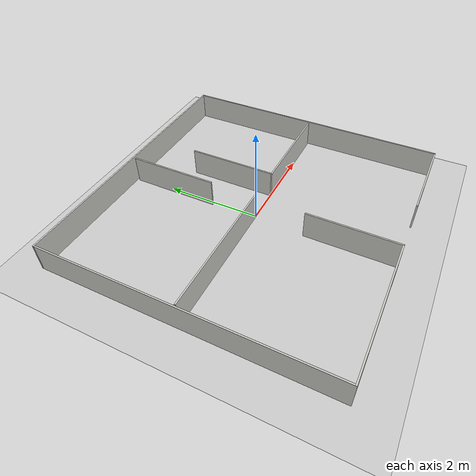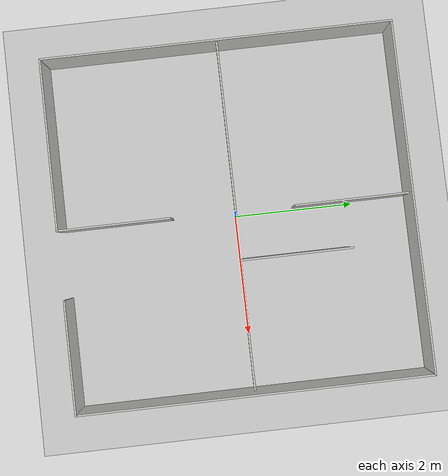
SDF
<?xml version="1.0" ?>

<sdf version="1.5">

  <world name="home-area">

    <scene>
      <ambient>0.6 0.6 0.6 1</ambient>
      <sky>
        <sunrise />
        <clouds>
          <speed>0.6</speed>
        </clouds>
      </sky>
    </scene>

    <!-- Engines: ode, bullet, simbody, dart-->
    <physics type="dart">
      <max_step_size>0.001</max_step_size>
      <real_time_factor>1</real_time_factor>
      <real_time_update_rate>1000</real_time_update_rate>
      <gravity>0 0 -9.8</gravity>
    </physics>

    <include>
      <uri>model://sun</uri>
    </include>

    <include>
      <uri>model://ground_plane</uri>
    </include>

    <model name="home-area">
      <include>
        <uri>model://home-area</uri>
        <pose>0 0 0 0 0 0</pose>
      </include>
    </model>

  </world>

</sdf>

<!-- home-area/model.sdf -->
<sdf version='1.6'>
  <model name='home-area'>
    <pose frame=''>0.036029 0.025 0 0 -0 0</pose>
    <link name='Wall_13'>
      <collision name='Wall_13_Collision'>
        <geometry>
          <box>
            <size>5.88029 0.03 0.6</size>
          </box>
        </geometry>
        <pose frame=''>0 0 0.3 0 -0 0</pose>
      </collision>
      <visual name='Wall_13_Visual'>
        <pose frame=''>0 0 0.3 0 -0 0</pose>
        <geometry>
          <box>
            <size>5.88029 0.03 0.6</size>
          </box>
        </geometry>
        <material>
          <script>
            <uri>file://media/materials/scripts/gazebo.material</uri>
            <name>Gazebo/CeilingTiled</name>
          </script>
          <ambient>1 1 1 1</ambient>
        </material>
        <meta>
          <layer>0</layer>
        </meta>
      </visual>
      <pose frame=''>2.92497 -0 0 0 -0 -1.5708</pose>
    </link>
    <link name='Wall_14'>
      <collision name='Wall_14_Collision'>
        <geometry>
          <box>
            <size>1.88012 0.03 0.6</size>
          </box>
        </geometry>
        <pose frame=''>0 0 0.3 0 -0 0</pose>
      </collision>
      <visual name='Wall_14_Visual'>
        <pose frame=''>0 0 0.3 0 -0 0</pose>
        <geometry>
          <box>
            <size>1.88012 0.03 0.6</size>
          </box>
        </geometry>
        <material>
          <script>
            <uri>file://media/materials/scripts/gazebo.material</uri>
            <name>Gazebo/CeilingTiled</name>
          </script>
          <ambient>1 1 1 1</ambient>
        </material>
        <meta>
          <layer>0</layer>
        </meta>
      </visual>
      <pose frame=''>1.99997 -2.925 0 0 -0 3.14159</pose>
    </link>
    <link name='Wall_16'>
      <collision name='Wall_16_Collision'>
        <geometry>
          <box>
            <size>1.87987 0.03 0.6</size>
          </box>
        </geometry>
        <pose frame=''>0 0 0.3 0 -0 0</pose>
      </collision>
      <visual name='Wall_16_Visual'>
        <pose frame=''>0 0 0.3 0 -0 0</pose>
        <geometry>
          <box>
            <size>1.87987 0.03 0.6</size>
          </box>
        </geometry>
        <material>
          <script>
            <uri>file://media/materials/scripts/gazebo.material</uri>
            <name>Gazebo/CeilingTiled</name>
          </script>
          <ambient>1 1 1 1</ambient>
        </material>
        <meta>
          <layer>0</layer>
        </meta>
      </visual>
      <pose frame=''>-0.054029 1.922 0 0 -0 -1.5708</pose>
    </link>
    <link name='Wall_18'>
      <collision name='Wall_18_Collision'>
        <geometry>
          <box>
            <size>2.88023 0.03 0.6</size>
          </box>
        </geometry>
        <pose frame=''>0 0 0.3 0 -0 0</pose>
      </collision>
      <visual name='Wall_18_Visual'>
        <pose frame=''>0 0 0.3 0 -0 0</pose>
        <geometry>
          <box>
            <size>2.88023 0.03 0.6</size>
          </box>
        </geometry>
        <material>
          <script>
            <uri>file://media/materials/scripts/gazebo.material</uri>
            <name>Gazebo/CeilingTiled</name>
          </script>
          <ambient>1 1 1 1</ambient>
        </material>
        <meta>
          <layer>0</layer>
        </meta>
      </visual>
      <pose frame=''>-1.45403 0.01 0 0 -0 0</pose>
    </link>
    <link name='Wall_21'>
      <collision name='Wall_21_Collision'>
        <geometry>
          <box>
            <size>2.13 0.03 0.6</size>
          </box>
        </geometry>
        <pose frame=''>0 0 0.3 0 -0 0</pose>
      </collision>
      <visual name='Wall_21_Visual'>
        <pose frame=''>0 0 0.3 0 -0 0</pose>
        <geometry>
          <box>
            <size>2.13 0.03 0.6</size>
          </box>
        </geometry>
        <material>
          <script>
            <uri>file://media/materials/scripts/gazebo.material</uri>
            <name>Gazebo/CeilingTiled</name>
          </script>
          <ambient>1 1 1 1</ambient>
        </material>
        <meta>
          <layer>0</layer>
        </meta>
      </visual>
      <pose frame=''>1.78497 -0.003 0 0 -0 3.14159</pose>
    </link>
    <link name='Wall_22'>
      <collision name='Wall_22_Collision'>
        <geometry>
          <box>
            <size>1.87955 0.03 0.6</size>
          </box>
        </geometry>
        <pose frame=''>0 0 0.3 0 -0 0</pose>
      </collision>
      <visual name='Wall_22_Visual'>
        <pose frame=''>0 0 0.3 0 -0 0</pose>
        <geometry>
          <box>
            <size>1.87955 0.03 0.6</size>
          </box>
        </geometry>
        <material>
          <script>
            <uri>file://media/materials/scripts/gazebo.material</uri>
            <name>Gazebo/CeilingTiled</name>
          </script>
          <ambient>1 1 1 1</ambient>
        </material>
        <meta>
          <layer>0</layer>
        </meta>
      </visual>
      <pose frame=''>0.734971 0.922 0 0 -0 1.5708</pose>
    </link>
    <link name='Wall_5'>
      <collision name='Wall_5_Collision'>
        <geometry>
          <box>
            <size>5.88 0.03 0.6</size>
          </box>
        </geometry>
        <pose frame=''>0 0 0.3 0 -0 0</pose>
      </collision>
      <visual name='Wall_5_Visual'>
        <pose frame=''>0 0 0.3 0 -0 0</pose>
        <geometry>
          <box>
            <size>5.88 0.03 0.6</size>
          </box>
        </geometry>
        <material>
          <script>
            <uri>file://media/materials/scripts/gazebo.material</uri>
            <name>Gazebo/CeilingTiled</name>
          </script>
          <ambient>1 1 1 1</ambient>
        </material>
        <meta>
          <layer>0</layer>
        </meta>
      </visual>
      <pose frame=''>-2.9e-05 2.925 0 0 -0 3.14159</pose>
    </link>
    <link name='Wall_6'>
      <collision name='Wall_6_Collision'>
        <geometry>
          <box>
            <size>5.88029 0.03 0.6</size>
          </box>
        </geometry>
        <pose frame=''>0 0 0.3 0 -0 0</pose>
      </collision>
      <visual name='Wall_6_Visual'>
        <pose frame=''>0 0 0.3 0 -0 0</pose>
        <geometry>
          <box>
            <size>5.88029 0.03 0.6</size>
          </box>
        </geometry>
        <material>
          <script>
            <uri>file://media/materials/scripts/gazebo.material</uri>
            <name>Gazebo/CeilingTiled</name>
          </script>
          <ambient>1 1 1 1</ambient>
        </material>
        <meta>
          <layer>0</layer>
        </meta>
      </visual>
      <pose frame=''>-2.92503 -0 0 0 -0 -1.5708</pose>
    </link>
    <link name='Wall_7'>
      <collision name='Wall_7_Collision'>
        <geometry>
          <box>
            <size>2.87988 0.03 0.6</size>
          </box>
        </geometry>
        <pose frame=''>0 0 0.3 0 -0 0</pose>
      </collision>
      <visual name='Wall_7_Visual'>
        <pose frame=''>0 0 0.3 0 -0 0</pose>
        <geometry>
          <box>
            <size>2.87988 0.03 0.6</size>
          </box>
        </geometry>
        <material>
          <script>
            <uri>file://media/materials/scripts/gazebo.material</uri>
            <name>Gazebo/CeilingTiled</name>
          </script>
          <ambient>1 1 1 1</ambient>
        </material>
        <meta>
          <layer>0</layer>
        </meta>
      </visual>
      <pose frame=''>-1.50003 -2.925 0 0 -0 0</pose>
    </link>
    <link name='Wall_8'>
      <collision name='Wall_8_Collision'>
        <geometry>
          <box>
            <size>1.87971 0.03 0.6</size>
          </box>
        </geometry>
        <pose frame=''>0 0 0.3 0 -0 0</pose>
      </collision>
      <visual name='Wall_8_Visual'>
        <pose frame=''>0 0 0.3 0 -0 0</pose>
        <geometry>
          <box>
            <size>1.87971 0.03 0.6</size>
          </box>
        </geometry>
        <material>
          <script>
            <uri>file://media/materials/scripts/gazebo.material</uri>
            <name>Gazebo/CeilingTiled</name>
          </script>
          <ambient>1 1 1 1</ambient>
        </material>
        <meta>
          <layer>0</layer>
        </meta>
      </visual>
      <pose frame=''>-0.075029 -2 0 0 -0 1.5708</pose>
    </link>
    <static>1</static>
  </model>
</sdf>
